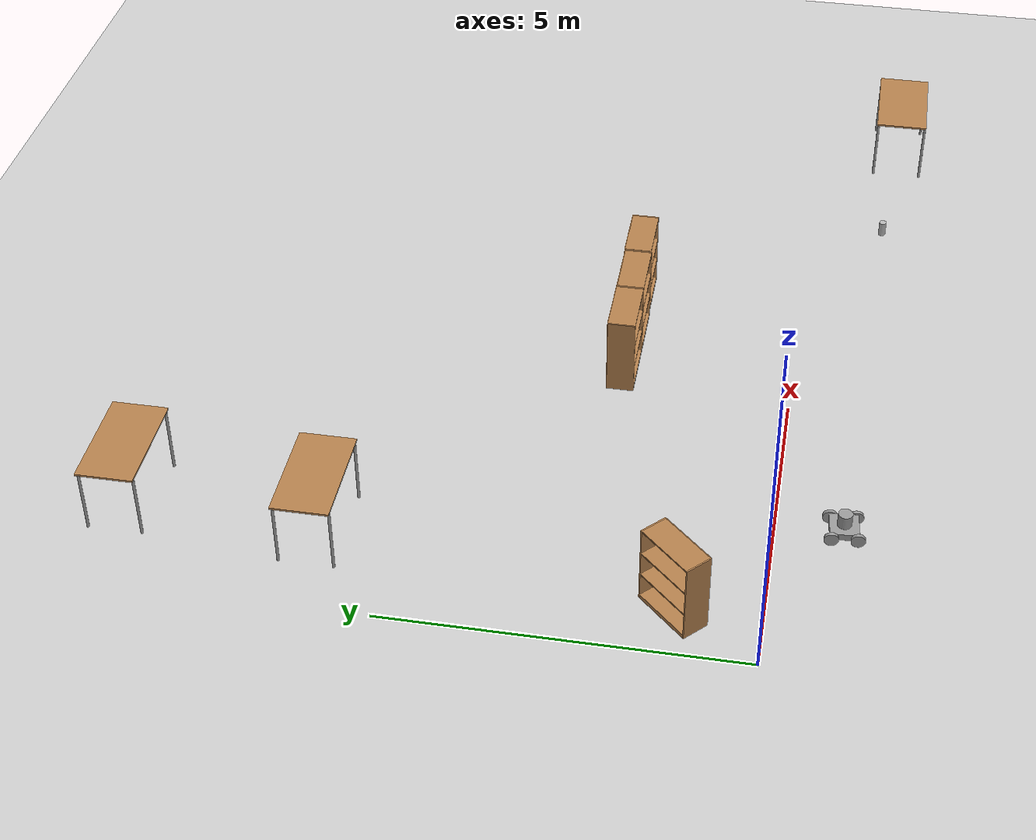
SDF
<sdf version="1.6">
 <world name="default">
  <model name="ground_plane">
   <static>1</static>
   <link name="link">
    <collision name="collision">
     <geometry><plane><normal>0 0 1</normal><size>100 100</size></plane></geometry>
     <surface>
      <contact><collide_bitmask>65535</collide_bitmask></contact>
      <friction><ode><mu>100</mu><mu2>50</mu2></ode></friction>
     </surface>
    </collision>
    <visual name="visual">
     <cast_shadows>0</cast_shadows>
     <geometry><plane><normal>0 0 1</normal><size>100 100</size></plane></geometry>
     <material>
      <script><uri>file://media/materials/scripts/gazebo.material</uri><name>Gazebo/Grey</name></script>
     </material>
    </visual>
   </link>
  </model>
  <model name="table_clone_clone">
   <static>1</static>
   <link name="link">
    <collision name="surface">
     <pose>0 0 1 0 -0 0</pose>
     <geometry><box><size>1.5 0.8 0.03</size></box></geometry>
     <surface><friction><ode><mu>0.6</mu><mu2>0.6</mu2></ode></friction></surface>
    </collision>
    <visual name="visual1">
     <pose>0 0 1 0 -0 0</pose>
     <geometry><box><size>1.5 0.8 0.03</size></box></geometry>
     <material>
      <script><uri>file://media/materials/scripts/gazebo.material</uri><name>Gazebo/Wood</name></script>
     </material>
    </visual>
    <collision name="front_left_leg">
     <pose>0.68 0.38 0.5 0 -0 0</pose>
     <geometry><cylinder><radius>0.02</radius><length>1</length></cylinder></geometry>
    </collision>
    <visual name="front_left_leg">
     <pose>0.68 0.38 0.5 0 -0 0</pose>
     <geometry><cylinder><radius>0.02</radius><length>1</length></cylinder></geometry>
     <material>
      <script><uri>file://media/materials/scripts/gazebo.material</uri><name>Gazebo/Grey</name></script>
     </material>
    </visual>
    <collision name="front_right_leg">
     <pose>0.68 -0.38 0.5 0 -0 0</pose>
     <geometry><cylinder><radius>0.02</radius><length>1</length></cylinder></geometry>
    </collision>
    <visual name="front_right_leg">
     <pose>0.68 -0.38 0.5 0 -0 0</pose>
     <geometry><cylinder><radius>0.02</radius><length>1</length></cylinder></geometry>
     <material>
      <script><uri>file://media/materials/scripts/gazebo.material</uri><name>Gazebo/Grey</name></script>
     </material>
    </visual>
    <collision name="back_right_leg">
     <pose>-0.68 -0.38 0.5 0 -0 0</pose>
     <geometry><cylinder><radius>0.02</radius><length>1</length></cylinder></geometry>
    </collision>
    <visual name="back_right_leg">
     <pose>-0.68 -0.38 0.5 0 -0 0</pose>
     <geometry><cylinder><radius>0.02</radius><length>1</length></cylinder></geometry>
     <material>
      <script><uri>file://media/materials/scripts/gazebo.material</uri><name>Gazebo/Grey</name></script>
     </material>
    </visual>
    <collision name="back_left_leg">
     <pose>-0.68 0.38 0.5 0 -0 0</pose>
     <geometry><cylinder><radius>0.02</radius><length>1</length></cylinder></geometry>
    </collision>
    <visual name="back_left_leg">
     <pose>-0.68 0.38 0.5 0 -0 0</pose>
     <geometry><cylinder><radius>0.02</radius><length>1</length></cylinder></geometry>
     <material>
      <script><uri>file://media/materials/scripts/gazebo.material</uri><name>Gazebo/Grey</name></script>
     </material>
    </visual>
   </link>
   <pose>12.0675 -1.32748 0 0 -0 0</pose>
  </model>
  <model name="bookshelf">
   <static>1</static>
   <link name="link">
    <inertial><mass>1</mass></inertial>
    <collision name="back">
     <pose>0 0.005 0.6 0 -0 0</pose>
     <geometry><box><size>0.9 0.01 1.2</size></box></geometry>
    </collision>
    <visual name="visual1">
     <pose>0 0.005 0.6 0 -0 0</pose>
     <geometry><box><size>0.9 0.01 1.2</size></box></geometry>
     <material>
      <script><uri>file://media/materials/scripts/gazebo.material</uri><name>Gazebo/Wood</name></script>
     </material>
    </visual>
    <collision name="left_side">
     <pose>0.45 -0.195 0.6 0 -0 0</pose>
     <geometry><box><size>0.02 0.4 1.2</size></box></geometry>
    </collision>
    <visual name="visual2">
     <pose>0.45 -0.195 0.6 0 -0 0</pose>
     <geometry><box><size>0.02 0.4 1.2</size></box></geometry>
     <material>
      <script><uri>file://media/materials/scripts/gazebo.material</uri><name>Gazebo/Wood</name></script>
     </material>
    </visual>
    <collision name="right_side">
     <pose>-0.45 -0.195 0.6 0 -0 0</pose>
     <geometry><box><size>0.02 0.4 1.2</size></box></geometry>
    </collision>
    <visual name="visual3">
     <pose>-0.45 -0.195 0.6 0 -0 0</pose>
     <geometry><box><size>0.02 0.4 1.2</size></box></geometry>
     <material>
      <script><uri>file://media/materials/scripts/gazebo.material</uri><name>Gazebo/Wood</name></script>
     </material>
    </visual>
    <collision name="bottom">
     <pose>0 -0.195 0.03 0 -0 0</pose>
     <geometry><box><size>0.88 0.4 0.06</size></box></geometry>
    </collision>
    <visual name="visual4">
     <pose>0 -0.195 0.03 0 -0 0</pose>
     <geometry><box><size>0.88 0.4 0.06</size></box></geometry>
     <material>
      <script><uri>file://media/materials/scripts/gazebo.material</uri><name>Gazebo/Wood</name></script>
     </material>
    </visual>
    <collision name="top">
     <pose>0 -0.195 1.19 0 -0 0</pose>
     <geometry><box><size>0.88 0.4 0.02</size></box></geometry>
    </collision>
    <visual name="visual5">
     <pose>0 -0.195 1.19 0 -0 0</pose>
     <geometry><box><size>0.88 0.4 0.02</size></box></geometry>
     <material>
      <script><uri>file://media/materials/scripts/gazebo.material</uri><name>Gazebo/Wood</name></script>
     </material>
    </visual>
    <collision name="low_shelf">
     <pose>0 -0.195 0.43 0 -0 0</pose>
     <geometry><box><size>0.88 0.4 0.02</size></box></geometry>
    </collision>
    <visual name="visual6">
     <pose>0 -0.195 0.43 0 -0 0</pose>
     <geometry><box><size>0.88 0.4 0.02</size></box></geometry>
     <material>
      <script><uri>file://media/materials/scripts/gazebo.material</uri><name>Gazebo/Wood</name></script>
     </material>
    </visual>
    <collision name="high_shelf">
     <pose>0 -0.195 0.8 0 -0 0</pose>
     <geometry><box><size>0.88 0.4 0.02</size></box></geometry>
    </collision>
    <visual name="visual7">
     <pose>0 -0.195 0.8 0 -0 0</pose>
     <geometry><box><size>0.88 0.4 0.02</size></box></geometry>
     <material>
      <script><uri>file://media/materials/scripts/gazebo.material</uri><name>Gazebo/Wood</name></script>
     </material>
    </visual>
   </link>
   <pose>5.486 2.67468 0 0 -0 0</pose>
  </model>
  <model name="bookshelf_clone">
   <static>1</static>
   <link name="link">
    <inertial><mass>1</mass></inertial>
    <collision name="back">
     <pose>0 0.005 0.6 0 -0 0</pose>
     <geometry><box><size>0.9 0.01 1.2</size></box></geometry>
    </collision>
    <visual name="visual1">
     <pose>0 0.005 0.6 0 -0 0</pose>
     <geometry><box><size>0.9 0.01 1.2</size></box></geometry>
     <material>
      <script><uri>file://media/materials/scripts/gazebo.material</uri><name>Gazebo/Wood</name></script>
     </material>
    </visual>
    <collision name="left_side">
     <pose>0.45 -0.195 0.6 0 -0 0</pose>
     <geometry><box><size>0.02 0.4 1.2</size></box></geometry>
    </collision>
    <visual name="visual2">
     <pose>0.45 -0.195 0.6 0 -0 0</pose>
     <geometry><box><size>0.02 0.4 1.2</size></box></geometry>
     <material>
      <script><uri>file://media/materials/scripts/gazebo.material</uri><name>Gazebo/Wood</name></script>
     </material>
    </visual>
    <collision name="right_side">
     <pose>-0.45 -0.195 0.6 0 -0 0</pose>
     <geometry><box><size>0.02 0.4 1.2</size></box></geometry>
    </collision>
    <visual name="visual3">
     <pose>-0.45 -0.195 0.6 0 -0 0</pose>
     <geometry><box><size>0.02 0.4 1.2</size></box></geometry>
     <material>
      <script><uri>file://media/materials/scripts/gazebo.material</uri><name>Gazebo/Wood</name></script>
     </material>
    </visual>
    <collision name="bottom">
     <pose>0 -0.195 0.03 0 -0 0</pose>
     <geometry><box><size>0.88 0.4 0.06</size></box></geometry>
    </collision>
    <visual name="visual4">
     <pose>0 -0.195 0.03 0 -0 0</pose>
     <geometry><box><size>0.88 0.4 0.06</size></box></geometry>
     <material>
      <script><uri>file://media/materials/scripts/gazebo.material</uri><name>Gazebo/Wood</name></script>
     </material>
    </visual>
    <collision name="top">
     <pose>0 -0.195 1.19 0 -0 0</pose>
     <geometry><box><size>0.88 0.4 0.02</size></box></geometry>
    </collision>
    <visual name="visual5">
     <pose>0 -0.195 1.19 0 -0 0</pose>
     <geometry><box><size>0.88 0.4 0.02</size></box></geometry>
     <material>
      <script><uri>file://media/materials/scripts/gazebo.material</uri><name>Gazebo/Wood</name></script>
     </material>
    </visual>
    <collision name="low_shelf">
     <pose>0 -0.195 0.43 0 -0 0</pose>
     <geometry><box><size>0.88 0.4 0.02</size></box></geometry>
    </collision>
    <visual name="visual6">
     <pose>0 -0.195 0.43 0 -0 0</pose>
     <geometry><box><size>0.88 0.4 0.02</size></box></geometry>
     <material>
      <script><uri>file://media/materials/scripts/gazebo.material</uri><name>Gazebo/Wood</name></script>
     </material>
    </visual>
    <collision name="high_shelf">
     <pose>0 -0.195 0.8 0 -0 0</pose>
     <geometry><box><size>0.88 0.4 0.02</size></box></geometry>
    </collision>
    <visual name="visual7">
     <pose>0 -0.195 0.8 0 -0 0</pose>
     <geometry><box><size>0.88 0.4 0.02</size></box></geometry>
     <material>
      <script><uri>file://media/materials/scripts/gazebo.material</uri><name>Gazebo/Wood</name></script>
     </material>
    </visual>
   </link>
   <pose>6.40253 2.67434 0 0 -0 0</pose>
  </model>
  <model name="bookshelf_clone_clone">
   <static>1</static>
   <link name="link">
    <inertial><mass>1</mass></inertial>
    <collision name="back">
     <pose>0 0.005 0.6 0 -0 0</pose>
     <geometry><box><size>0.9 0.01 1.2</size></box></geometry>
    </collision>
    <visual name="visual1">
     <pose>0 0.005 0.6 0 -0 0</pose>
     <geometry><box><size>0.9 0.01 1.2</size></box></geometry>
     <material>
      <script><uri>file://media/materials/scripts/gazebo.material</uri><name>Gazebo/Wood</name></script>
     </material>
    </visual>
    <collision name="left_side">
     <pose>0.45 -0.195 0.6 0 -0 0</pose>
     <geometry><box><size>0.02 0.4 1.2</size></box></geometry>
    </collision>
    <visual name="visual2">
     <pose>0.45 -0.195 0.6 0 -0 0</pose>
     <geometry><box><size>0.02 0.4 1.2</size></box></geometry>
     <material>
      <script><uri>file://media/materials/scripts/gazebo.material</uri><name>Gazebo/Wood</name></script>
     </material>
    </visual>
    <collision name="right_side">
     <pose>-0.45 -0.195 0.6 0 -0 0</pose>
     <geometry><box><size>0.02 0.4 1.2</size></box></geometry>
    </collision>
    <visual name="visual3">
     <pose>-0.45 -0.195 0.6 0 -0 0</pose>
     <geometry><box><size>0.02 0.4 1.2</size></box></geometry>
     <material>
      <script><uri>file://media/materials/scripts/gazebo.material</uri><name>Gazebo/Wood</name></script>
     </material>
    </visual>
    <collision name="bottom">
     <pose>0 -0.195 0.03 0 -0 0</pose>
     <geometry><box><size>0.88 0.4 0.06</size></box></geometry>
    </collision>
    <visual name="visual4">
     <pose>0 -0.195 0.03 0 -0 0</pose>
     <geometry><box><size>0.88 0.4 0.06</size></box></geometry>
     <material>
      <script><uri>file://media/materials/scripts/gazebo.material</uri><name>Gazebo/Wood</name></script>
     </material>
    </visual>
    <collision name="top">
     <pose>0 -0.195 1.19 0 -0 0</pose>
     <geometry><box><size>0.88 0.4 0.02</size></box></geometry>
    </collision>
    <visual name="visual5">
     <pose>0 -0.195 1.19 0 -0 0</pose>
     <geometry><box><size>0.88 0.4 0.02</size></box></geometry>
     <material>
      <script><uri>file://media/materials/scripts/gazebo.material</uri><name>Gazebo/Wood</name></script>
     </material>
    </visual>
    <collision name="low_shelf">
     <pose>0 -0.195 0.43 0 -0 0</pose>
     <geometry><box><size>0.88 0.4 0.02</size></box></geometry>
    </collision>
    <visual name="visual6">
     <pose>0 -0.195 0.43 0 -0 0</pose>
     <geometry><box><size>0.88 0.4 0.02</size></box></geometry>
     <material>
      <script><uri>file://media/materials/scripts/gazebo.material</uri><name>Gazebo/Wood</name></script>
     </material>
    </visual>
    <collision name="high_shelf">
     <pose>0 -0.195 0.8 0 -0 0</pose>
     <geometry><box><size>0.88 0.4 0.02</size></box></geometry>
    </collision>
    <visual name="visual7">
     <pose>0 -0.195 0.8 0 -0 0</pose>
     <geometry><box><size>0.88 0.4 0.02</size></box></geometry>
     <material>
      <script><uri>file://media/materials/scripts/gazebo.material</uri><name>Gazebo/Wood</name></script>
     </material>
    </visual>
   </link>
   <pose>7.3243 2.68724 0 0 -0 0</pose>
  </model>
  <model name="beer">
   <link name="link">
    <pose>0 0 0.115 0 -0 0</pose>
    <inertial>
     <mass>0.39</mass>
     <inertia><ixx>0.00058</ixx><ixy>0</ixy><ixz>0</ixz><iyy>0.00058</iyy><iyz>0</iyz><izz>0.00019</izz></inertia>
    </inertial>
    <collision name="collision">
     <geometry><cylinder><radius>0.055</radius><length>0.23</length></cylinder></geometry>
    </collision>
    <visual name="visual">
     <geometry><cylinder><radius>0.055</radius><length>0.23</length></cylinder></geometry>
     <material>
      <script>
       <uri>model://beer/materials/scripts</uri>
       <uri>model://beer/materials/textures</uri>
       <name>Beer/Diffuse</name>
      </script>
     </material>
    </visual>
   </link>
   <pose>9.62119 -1.16049 -8e-06 -1e-06 -0 -5.7e-05</pose>
  </model>
  <model name="table_clone_0_clone_0_clone_clone_clone_clone_clone_0">
   <static>1</static>
   <link name="link">
    <collision name="surface">
     <pose>0 0 1 0 -0 0</pose>
     <geometry><box><size>1.5 0.8 0.03</size></box></geometry>
     <surface><friction><ode><mu>0.6</mu><mu2>0.6</mu2></ode></friction></surface>
    </collision>
    <visual name="visual1">
     <pose>0 0 1 0 -0 0</pose>
     <geometry><box><size>1.5 0.8 0.03</size></box></geometry>
     <material>
      <script><uri>file://media/materials/scripts/gazebo.material</uri><name>Gazebo/Wood</name></script>
     </material>
    </visual>
    <collision name="front_left_leg">
     <pose>0.68 0.38 0.5 0 -0 0</pose>
     <geometry><cylinder><radius>0.02</radius><length>1</length></cylinder></geometry>
    </collision>
    <visual name="front_left_leg">
     <pose>0.68 0.38 0.5 0 -0 0</pose>
     <geometry><cylinder><radius>0.02</radius><length>1</length></cylinder></geometry>
     <material>
      <script><uri>file://media/materials/scripts/gazebo.material</uri><name>Gazebo/Grey</name></script>
     </material>
    </visual>
    <collision name="front_right_leg">
     <pose>0.68 -0.38 0.5 0 -0 0</pose>
     <geometry><cylinder><radius>0.02</radius><length>1</length></cylinder></geometry>
    </collision>
    <visual name="front_right_leg">
     <pose>0.68 -0.38 0.5 0 -0 0</pose>
     <geometry><cylinder><radius>0.02</radius><length>1</length></cylinder></geometry>
     <material>
      <script><uri>file://media/materials/scripts/gazebo.material</uri><name>Gazebo/Grey</name></script>
     </material>
    </visual>
    <collision name="back_right_leg">
     <pose>-0.68 -0.38 0.5 0 -0 0</pose>
     <geometry><cylinder><radius>0.02</radius><length>1</length></cylinder></geometry>
    </collision>
    <visual name="back_right_leg">
     <pose>-0.68 -0.38 0.5 0 -0 0</pose>
     <geometry><cylinder><radius>0.02</radius><length>1</length></cylinder></geometry>
     <material>
      <script><uri>file://media/materials/scripts/gazebo.material</uri><name>Gazebo/Grey</name></script>
     </material>
    </visual>
    <collision name="back_left_leg">
     <pose>-0.68 0.38 0.5 0 -0 0</pose>
     <geometry><cylinder><radius>0.02</radius><length>1</length></cylinder></geometry>
    </collision>
    <visual name="back_left_leg">
     <pose>-0.68 0.38 0.5 0 -0 0</pose>
     <geometry><cylinder><radius>0.02</radius><length>1</length></cylinder></geometry>
     <material>
      <script><uri>file://media/materials/scripts/gazebo.material</uri><name>Gazebo/Grey</name></script>
     </material>
    </visual>
   </link>
   <pose>1.65526 8.78422 0 0 -0 0</pose>
  </model>
  <model name="table_clone_0_clone_0_clone_clone_clone_clone_clone_1">
   <static>1</static>
   <link name="link">
    <collision name="surface">
     <pose>0 0 1 0 -0 0</pose>
     <geometry><box><size>1.5 0.8 0.03</size></box></geometry>
     <surface><friction><ode><mu>0.6</mu><mu2>0.6</mu2></ode></friction></surface>
    </collision>
    <visual name="visual1">
     <pose>0 0 1 0 -0 0</pose>
     <geometry><box><size>1.5 0.8 0.03</size></box></geometry>
     <material>
      <script><uri>file://media/materials/scripts/gazebo.material</uri><name>Gazebo/Wood</name></script>
     </material>
    </visual>
    <collision name="front_left_leg">
     <pose>0.68 0.38 0.5 0 -0 0</pose>
     <geometry><cylinder><radius>0.02</radius><length>1</length></cylinder></geometry>
    </collision>
    <visual name="front_left_leg">
     <pose>0.68 0.38 0.5 0 -0 0</pose>
     <geometry><cylinder><radius>0.02</radius><length>1</length></cylinder></geometry>
     <material>
      <script><uri>file://media/materials/scripts/gazebo.material</uri><name>Gazebo/Grey</name></script>
     </material>
    </visual>
    <collision name="front_right_leg">
     <pose>0.68 -0.38 0.5 0 -0 0</pose>
     <geometry><cylinder><radius>0.02</radius><length>1</length></cylinder></geometry>
    </collision>
    <visual name="front_right_leg">
     <pose>0.68 -0.38 0.5 0 -0 0</pose>
     <geometry><cylinder><radius>0.02</radius><length>1</length></cylinder></geometry>
     <material>
      <script><uri>file://media/materials/scripts/gazebo.material</uri><name>Gazebo/Grey</name></script>
     </material>
    </visual>
    <collision name="back_right_leg">
     <pose>-0.68 -0.38 0.5 0 -0 0</pose>
     <geometry><cylinder><radius>0.02</radius><length>1</length></cylinder></geometry>
    </collision>
    <visual name="back_right_leg">
     <pose>-0.68 -0.38 0.5 0 -0 0</pose>
     <geometry><cylinder><radius>0.02</radius><length>1</length></cylinder></geometry>
     <material>
      <script><uri>file://media/materials/scripts/gazebo.material</uri><name>Gazebo/Grey</name></script>
     </material>
    </visual>
    <collision name="back_left_leg">
     <pose>-0.68 0.38 0.5 0 -0 0</pose>
     <geometry><cylinder><radius>0.02</radius><length>1</length></cylinder></geometry>
    </collision>
    <visual name="back_left_leg">
     <pose>-0.68 0.38 0.5 0 -0 0</pose>
     <geometry><cylinder><radius>0.02</radius><length>1</length></cylinder></geometry>
     <material>
      <script><uri>file://media/materials/scripts/gazebo.material</uri><name>Gazebo/Grey</name></script>
     </material>
    </visual>
   </link>
   <pose>1.46571 6.0719 0 0 -0 0</pose>
  </model>
  <model name="bookshelf_0">
   <static>1</static>
   <link name="link">
    <inertial><mass>1</mass></inertial>
    <collision name="back">
     <pose>0 0.005 0.6 0 -0 0</pose>
     <geometry><box><size>0.9 0.01 1.2</size></box></geometry>
    </collision>
    <visual name="visual1">
     <pose>0 0.005 0.6 0 -0 0</pose>
     <geometry><box><size>0.9 0.01 1.2</size></box></geometry>
     <material>
      <script><uri>file://media/materials/scripts/gazebo.material</uri><name>Gazebo/Wood</name></script>
     </material>
    </visual>
    <collision name="left_side">
     <pose>0.45 -0.195 0.6 0 -0 0</pose>
     <geometry><box><size>0.02 0.4 1.2</size></box></geometry>
    </collision>
    <visual name="visual2">
     <pose>0.45 -0.195 0.6 0 -0 0</pose>
     <geometry><box><size>0.02 0.4 1.2</size></box></geometry>
     <material>
      <script><uri>file://media/materials/scripts/gazebo.material</uri><name>Gazebo/Wood</name></script>
     </material>
    </visual>
    <collision name="right_side">
     <pose>-0.45 -0.195 0.6 0 -0 0</pose>
     <geometry><box><size>0.02 0.4 1.2</size></box></geometry>
    </collision>
    <visual name="visual3">
     <pose>-0.45 -0.195 0.6 0 -0 0</pose>
     <geometry><box><size>0.02 0.4 1.2</size></box></geometry>
     <material>
      <script><uri>file://media/materials/scripts/gazebo.material</uri><name>Gazebo/Wood</name></script>
     </material>
    </visual>
    <collision name="bottom">
     <pose>0 -0.195 0.03 0 -0 0</pose>
     <geometry><box><size>0.88 0.4 0.06</size></box></geometry>
    </collision>
    <visual name="visual4">
     <pose>0 -0.195 0.03 0 -0 0</pose>
     <geometry><box><size>0.88 0.4 0.06</size></box></geometry>
     <material>
      <script><uri>file://media/materials/scripts/gazebo.material</uri><name>Gazebo/Wood</name></script>
     </material>
    </visual>
    <collision name="top">
     <pose>0 -0.195 1.19 0 -0 0</pose>
     <geometry><box><size>0.88 0.4 0.02</size></box></geometry>
    </collision>
    <visual name="visual5">
     <pose>0 -0.195 1.19 0 -0 0</pose>
     <geometry><box><size>0.88 0.4 0.02</size></box></geometry>
     <material>
      <script><uri>file://media/materials/scripts/gazebo.material</uri><name>Gazebo/Wood</name></script>
     </material>
    </visual>
    <collision name="low_shelf">
     <pose>0 -0.195 0.43 0 -0 0</pose>
     <geometry><box><size>0.88 0.4 0.02</size></box></geometry>
    </collision>
    <visual name="visual6">
     <pose>0 -0.195 0.43 0 -0 0</pose>
     <geometry><box><size>0.88 0.4 0.02</size></box></geometry>
     <material>
      <script><uri>file://media/materials/scripts/gazebo.material</uri><name>Gazebo/Wood</name></script>
     </material>
    </visual>
    <collision name="high_shelf">
     <pose>0 -0.195 0.8 0 -0 0</pose>
     <geometry><box><size>0.88 0.4 0.02</size></box></geometry>
    </collision>
    <visual name="visual7">
     <pose>0 -0.195 0.8 0 -0 0</pose>
     <geometry><box><size>0.88 0.4 0.02</size></box></geometry>
     <material>
      <script><uri>file://media/materials/scripts/gazebo.material</uri><name>Gazebo/Wood</name></script>
     </material>
    </visual>
   </link>
   <pose>0.885552 1.03872 0 0 0 -2.33542</pose>
  </model>
  <model name="fourWheelRobby">
   <link name="link_1">
    <inertial>
     <mass>1</mass>
     <inertia>
      <ixx>0.166667</ixx>
      <ixy>0</ixy>
      <ixz>0</ixz>
      <iyy>0.166667</iyy>
      <iyz>0</iyz>
      <izz>0.166667</izz>
     </inertia>
    </inertial>
    <pose>-0.296148 0.102054 0.11 0 -0 0</pose>
    <visual name="visual">
     <geometry><box><size>0.4 0.4 0.1</size></box></geometry>
     <material>
      <lighting>1</lighting>
      <script><uri>file://media/materials/scripts/gazebo.material</uri><name>Gazebo/Grey</name></script>
      <shader type="pixel"><normal_map>__default__</normal_map></shader>
      <ambient>0.3 0.3 0.3 1</ambient>
      <diffuse>0.7 0.7 0.7 1</diffuse>
      <specular>0.01 0.01 0.01 1</specular>
      <emissive>0 0 0 1</emissive>
     </material>
    </visual>
    <collision name="collision">
     <geometry><box><size>0.4 0.4 0.1</size></box></geometry>
     <surface>
      <friction>
       <ode><mu>1</mu><mu2>1</mu2><fdir1>0 0 0</fdir1><slip1>0</slip1><slip2>0</slip2></ode>
       <torsional>
        <coefficient>1</coefficient>
        <patch_radius>0</patch_radius>
        <surface_radius>0</surface_radius>
        <use_patch_radius>1</use_patch_radius>
        <ode><slip>0</slip></ode>
       </torsional>
      </friction>
      <bounce><restitution_coefficient>0</restitution_coefficient><threshold>1e+06</threshold></bounce>
      <contact>
       <collide_without_contact>0</collide_without_contact>
       <collide_without_contact_bitmask>1</collide_without_contact_bitmask>
       <collide_bitmask>1</collide_bitmask>
       <ode>
        <soft_cfm>0</soft_cfm>
        <soft_erp>0.2</soft_erp>
        <kp>1e+13</kp>
        <kd>1</kd>
        <max_vel>0.01</max_vel>
        <min_depth>0</min_depth>
       </ode>
       <bullet>
        <split_impulse>1</split_impulse>
        <split_impulse_penetration_threshold>-0.01</split_impulse_penetration_threshold>
        <soft_cfm>0</soft_cfm>
        <soft_erp>0.2</soft_erp>
        <kp>1e+13</kp>
        <kd>1</kd>
       </bullet>
      </contact>
     </surface>
    </collision>
   </link>
   <link name="link_2">
    <inertial>
     <mass>1</mass>
     <inertia><ixx>0.145833</ixx><ixy>0</ixy><ixz>0</ixz><iyy>0.145833</iyy><iyz>0</iyz><izz>0.125</izz></inertia>
    </inertial>
    <pose>-0.521147 0.282053 0.098 0 1.5707 0</pose>
    <visual name="visual">
     <geometry><cylinder><radius>0.1</radius><length>0.05</length></cylinder></geometry>
     <material>
      <lighting>1</lighting>
      <script><uri>file://media/materials/scripts/gazebo.material</uri><name>Gazebo/Grey</name></script>
      <shader type="pixel"><normal_map>__default__</normal_map></shader>
      <ambient>0.3 0.3 0.3 1</ambient>
      <diffuse>0.7 0.7 0.7 1</diffuse>
      <specular>0.01 0.01 0.01 1</specular>
      <emissive>0 0 0 1</emissive>
     </material>
    </visual>
    <collision name="collision">
     <geometry><cylinder><radius>0.1</radius><length>0.05</length></cylinder></geometry>
     <surface>
      <friction>
       <ode><mu>1</mu><mu2>1</mu2><fdir1>0 0 0</fdir1><slip1>0</slip1><slip2>0</slip2></ode>
       <torsional>
        <coefficient>1</coefficient>
        <patch_radius>0</patch_radius>
        <surface_radius>0</surface_radius>
        <use_patch_radius>1</use_patch_radius>
        <ode><slip>0</slip></ode>
       </torsional>
      </friction>
      <bounce><restitution_coefficient>0</restitution_coefficient><threshold>1e+06</threshold></bounce>
      <contact>
       <collide_without_contact>0</collide_without_contact>
       <collide_without_contact_bitmask>1</collide_without_contact_bitmask>
       <collide_bitmask>1</collide_bitmask>
       <ode>
        <soft_cfm>0</soft_cfm>
        <soft_erp>0.2</soft_erp>
        <kp>1e+13</kp>
        <kd>1</kd>
        <max_vel>0.01</max_vel>
        <min_depth>0</min_depth>
       </ode>
       <bullet>
        <split_impulse>1</split_impulse>
        <split_impulse_penetration_threshold>-0.01</split_impulse_penetration_threshold>
        <soft_cfm>0</soft_cfm>
        <soft_erp>0.2</soft_erp>
        <kp>1e+13</kp>
        <kd>1</kd>
       </bullet>
      </contact>
     </surface>
    </collision>
   </link>
   <link name="link_2_clone">
    <inertial>
     <mass>1</mass>
     <inertia><ixx>0.145833</ixx><ixy>0</ixy><ixz>0</ixz><iyy>0.145833</iyy><iyz>0</iyz><izz>0.125</izz></inertia>
    </inertial>
    <pose>-0.521157 -0.077947 0.088 0 1.5707 0</pose>
    <visual name="visual">
     <geometry><cylinder><radius>0.1</radius><length>0.05</length></cylinder></geometry>
     <material>
      <lighting>1</lighting>
      <script><uri>file://media/materials/scripts/gazebo.material</uri><name>Gazebo/Grey</name></script>
      <shader type="pixel"><normal_map>__default__</normal_map></shader>
      <ambient>0.3 0.3 0.3 1</ambient>
      <diffuse>0.7 0.7 0.7 1</diffuse>
      <specular>0.01 0.01 0.01 1</specular>
      <emissive>0 0 0 1</emissive>
     </material>
    </visual>
    <collision name="collision">
     <geometry><cylinder><radius>0.1</radius><length>0.05</length></cylinder></geometry>
     <surface>
      <friction>
       <ode><mu>1</mu><mu2>1</mu2><fdir1>0 0 0</fdir1><slip1>0</slip1><slip2>0</slip2></ode>
       <torsional>
        <coefficient>1</coefficient>
        <patch_radius>0</patch_radius>
        <surface_radius>0</surface_radius>
        <use_patch_radius>1</use_patch_radius>
        <ode><slip>0</slip></ode>
       </torsional>
      </friction>
      <bounce><restitution_coefficient>0</restitution_coefficient><threshold>1e+06</threshold></bounce>
      <contact>
       <collide_without_contact>0</collide_without_contact>
       <collide_without_contact_bitmask>1</collide_without_contact_bitmask>
       <collide_bitmask>1</collide_bitmask>
       <ode>
        <soft_cfm>0</soft_cfm>
        <soft_erp>0.2</soft_erp>
        <kp>1e+13</kp>
        <kd>1</kd>
        <max_vel>0.01</max_vel>
        <min_depth>0</min_depth>
       </ode>
       <bullet>
        <split_impulse>1</split_impulse>
        <split_impulse_penetration_threshold>-0.01</split_impulse_penetration_threshold>
        <soft_cfm>0</soft_cfm>
        <soft_erp>0.2</soft_erp>
        <kp>1e+13</kp>
        <kd>1</kd>
       </bullet>
      </contact>
     </surface>
    </collision>
   </link>
   <link name="link_2_clone_clone">
    <inertial>
     <mass>1</mass>
     <inertia><ixx>0.145833</ixx><ixy>0</ixy><ixz>0</ixz><iyy>0.145833</iyy><iyz>0</iyz><izz>0.125</izz></inertia>
    </inertial>
    <pose>-0.071137 -0.077947 0.088 0 1.5707 0</pose>
    <visual name="visual">
     <geometry><cylinder><radius>0.1</radius><length>0.05</length></cylinder></geometry>
     <material>
      <lighting>1</lighting>
      <script><uri>file://media/materials/scripts/gazebo.material</uri><name>Gazebo/Grey</name></script>
      <shader type="pixel"><normal_map>__default__</normal_map></shader>
      <ambient>0.3 0.3 0.3 1</ambient>
      <diffuse>0.7 0.7 0.7 1</diffuse>
      <specular>0.01 0.01 0.01 1</specular>
      <emissive>0 0 0 1</emissive>
     </material>
    </visual>
    <collision name="collision">
     <geometry><cylinder><radius>0.1</radius><length>0.05</length></cylinder></geometry>
     <surface>
      <friction>
       <ode><mu>1</mu><mu2>1</mu2><fdir1>0 0 0</fdir1><slip1>0</slip1><slip2>0</slip2></ode>
       <torsional>
        <coefficient>1</coefficient>
        <patch_radius>0</patch_radius>
        <surface_radius>0</surface_radius>
        <use_patch_radius>1</use_patch_radius>
        <ode><slip>0</slip></ode>
       </torsional>
      </friction>
      <bounce><restitution_coefficient>0</restitution_coefficient><threshold>1e+06</threshold></bounce>
      <contact>
       <collide_without_contact>0</collide_without_contact>
       <collide_without_contact_bitmask>1</collide_without_contact_bitmask>
       <collide_bitmask>1</collide_bitmask>
       <ode>
        <soft_cfm>0</soft_cfm>
        <soft_erp>0.2</soft_erp>
        <kp>1e+13</kp>
        <kd>1</kd>
        <max_vel>0.01</max_vel>
        <min_depth>0</min_depth>
       </ode>
       <bullet>
        <split_impulse>1</split_impulse>
        <split_impulse_penetration_threshold>-0.01</split_impulse_penetration_threshold>
        <soft_cfm>0</soft_cfm>
        <soft_erp>0.2</soft_erp>
        <kp>1e+13</kp>
        <kd>1</kd>
       </bullet>
      </contact>
     </surface>
    </collision>
   </link>
   <link name="link_2_clone_clone_clone">
    <inertial>
     <mass>1</mass>
     <inertia><ixx>0.145833</ixx><ixy>0</ixy><ixz>0</ixz><iyy>0.145833</iyy><iyz>0</iyz><izz>0.125</izz></inertia>
    </inertial>
    <pose>-0.071137 0.282053 0.088 0 1.5707 0</pose>
    <visual name="visual">
     <geometry><cylinder><radius>0.1</radius><length>0.05</length></cylinder></geometry>
     <material>
      <lighting>1</lighting>
      <script><uri>file://media/materials/scripts/gazebo.material</uri><name>Gazebo/Grey</name></script>
      <shader type="pixel"><normal_map>__default__</normal_map></shader>
      <ambient>0.3 0.3 0.3 1</ambient>
      <diffuse>0.7 0.7 0.7 1</diffuse>
      <specular>0.01 0.01 0.01 1</specular>
      <emissive>0 0 0 1</emissive>
     </material>
    </visual>
    <collision name="collision">
     <geometry><cylinder><radius>0.1</radius><length>0.05</length></cylinder></geometry>
     <surface>
      <friction>
       <ode><mu>1</mu><mu2>1</mu2><fdir1>0 0 0</fdir1><slip1>0</slip1><slip2>0</slip2></ode>
       <torsional>
        <coefficient>1</coefficient>
        <patch_radius>0</patch_radius>
        <surface_radius>0</surface_radius>
        <use_patch_radius>1</use_patch_radius>
        <ode><slip>0</slip></ode>
       </torsional>
      </friction>
      <bounce><restitution_coefficient>0</restitution_coefficient><threshold>1e+06</threshold></bounce>
      <contact>
       <collide_without_contact>0</collide_without_contact>
       <collide_without_contact_bitmask>1</collide_without_contact_bitmask>
       <collide_bitmask>1</collide_bitmask>
       <ode>
        <soft_cfm>0</soft_cfm>
        <soft_erp>0.2</soft_erp>
        <kp>1e+13</kp>
        <kd>1</kd>
        <max_vel>0.01</max_vel>
        <min_depth>0</min_depth>
       </ode>
       <bullet>
        <split_impulse>1</split_impulse>
        <split_impulse_penetration_threshold>-0.01</split_impulse_penetration_threshold>
        <soft_cfm>0</soft_cfm>
        <soft_erp>0.2</soft_erp>
        <kp>1e+13</kp>
        <kd>1</kd>
       </bullet>
      </contact>
     </surface>
    </collision>
   </link>
   <link name="link_3">
    <inertial>
     <mass>1</mass>
     <inertia><ixx>0.145833</ixx><ixy>0</ixy><ixz>0</ixz><iyy>0.145833</iyy><iyz>0</iyz><izz>0.125</izz></inertia>
    </inertial>
    <pose>-0.296148 0.102054 0.26 0 -0 0</pose>
    <visual name="visual">
     <geometry><cylinder><radius>0.1</radius><length>0.2</length></cylinder></geometry>
     <material>
      <lighting>1</lighting>
      <script><uri>file://media/materials/scripts/gazebo.material</uri><name>Gazebo/Grey</name></script>
      <shader type="pixel"><normal_map>__default__</normal_map></shader>
      <ambient>0.3 0.3 0.3 1</ambient>
      <diffuse>0.7 0.7 0.7 1</diffuse>
      <specular>0.01 0.01 0.01 1</specular>
      <emissive>0 0 0 1</emissive>
     </material>
    </visual>
    <collision name="collision">
     <geometry><cylinder><radius>0.1</radius><length>0.2</length></cylinder></geometry>
     <surface>
      <friction>
       <ode><mu>1</mu><mu2>1</mu2><fdir1>0 0 0</fdir1><slip1>0</slip1><slip2>0</slip2></ode>
       <torsional>
        <coefficient>1</coefficient>
        <patch_radius>0</patch_radius>
        <surface_radius>0</surface_radius>
        <use_patch_radius>1</use_patch_radius>
        <ode><slip>0</slip></ode>
       </torsional>
      </friction>
      <bounce><restitution_coefficient>0</restitution_coefficient><threshold>1e+06</threshold></bounce>
      <contact>
       <collide_without_contact>0</collide_without_contact>
       <collide_without_contact_bitmask>1</collide_without_contact_bitmask>
       <collide_bitmask>1</collide_bitmask>
       <ode>
        <soft_cfm>0</soft_cfm>
        <soft_erp>0.2</soft_erp>
        <kp>1e+13</kp>
        <kd>1</kd>
        <max_vel>0.01</max_vel>
        <min_depth>0</min_depth>
       </ode>
       <bullet>
        <split_impulse>1</split_impulse>
        <split_impulse_penetration_threshold>-0.01</split_impulse_penetration_threshold>
        <soft_cfm>0</soft_cfm>
        <soft_erp>0.2</soft_erp>
        <kp>1e+13</kp>
        <kd>1</kd>
       </bullet>
      </contact>
     </surface>
    </collision>
   </link>
   <joint name="link_1_JOINT_0" type="revolute">
    <parent>link_1</parent>
    <child>link_2_clone</child>
    <axis>
     <xyz>0 0 1</xyz>
     <limit>
      <lower>-1.79769e+308</lower>
      <upper>1.79769e+308</upper>
      <effort>-1</effort>
      <velocity>-1</velocity>
     </limit>
     <dynamics>
      <spring_reference>0</spring_reference>
      <spring_stiffness>0</spring_stiffness>
      <damping>0</damping>
     </dynamics>
    </axis>
    <physics>
     <ode><limit><cfm>0</cfm><erp>0.2</erp></limit><suspension><cfm>0</cfm><erp>0.2</erp></suspension></ode>
    </physics>
   </joint>
   <joint name="link_1_JOINT_1" type="revolute">
    <parent>link_1</parent>
    <child>link_2</child>
    <axis>
     <xyz>0 0 1</xyz>
     <limit>
      <lower>-1.79769e+308</lower>
      <upper>1.79769e+308</upper>
      <effort>-1</effort>
      <velocity>-1</velocity>
     </limit>
     <dynamics>
      <spring_reference>0</spring_reference>
      <spring_stiffness>0</spring_stiffness>
      <damping>0</damping>
     </dynamics>
    </axis>
    <physics>
     <ode><limit><cfm>0</cfm><erp>0.2</erp></limit><suspension><cfm>0</cfm><erp>0.2</erp></suspension></ode>
    </physics>
   </joint>
   <joint name="link_1_JOINT_2" type="revolute">
    <parent>link_1</parent>
    <child>link_2_clone_clone_clone</child>
    <axis>
     <xyz>0 0 1</xyz>
     <limit>
      <lower>-1.79769e+308</lower>
      <upper>1.79769e+308</upper>
      <effort>-1</effort>
      <velocity>-1</velocity>
     </limit>
     <dynamics>
      <spring_reference>0</spring_reference>
      <spring_stiffness>0</spring_stiffness>
      <damping>0</damping>
     </dynamics>
    </axis>
    <physics>
     <ode><limit><cfm>0</cfm><erp>0.2</erp></limit><suspension><cfm>0</cfm><erp>0.2</erp></suspension></ode>
    </physics>
   </joint>
   <joint name="link_1_JOINT_3" type="revolute">
    <parent>link_1</parent>
    <child>link_2_clone_clone</child>
    <axis>
     <xyz>1 0 0</xyz>
     <limit>
      <lower>-1.79769e+308</lower>
      <upper>1.79769e+308</upper>
      <effort>-1</effort>
      <velocity>-1</velocity>
     </limit>
     <dynamics>
      <spring_reference>0</spring_reference>
      <spring_stiffness>0</spring_stiffness>
      <damping>0</damping>
     </dynamics>
    </axis>
    <physics>
     <ode><limit><cfm>0</cfm><erp>0.2</erp></limit><suspension><cfm>0</cfm><erp>0.2</erp></suspension></ode>
    </physics>
   </joint>
   <joint name="link_1_JOINT_4" type="fixed">
    <parent>link_1</parent>
    <child>link_3</child>
    <physics>
     <ode><limit><cfm>0</cfm><erp>0.2</erp></limit><suspension><cfm>0</cfm><erp>0.2</erp></suspension></ode>
    </physics>
   </joint>
   <static>0</static>
   <pose>2.84633 -0.995187 0.012002 2e-06 -4e-06 0.102319</pose>
  </model>
 </world>
</sdf>
